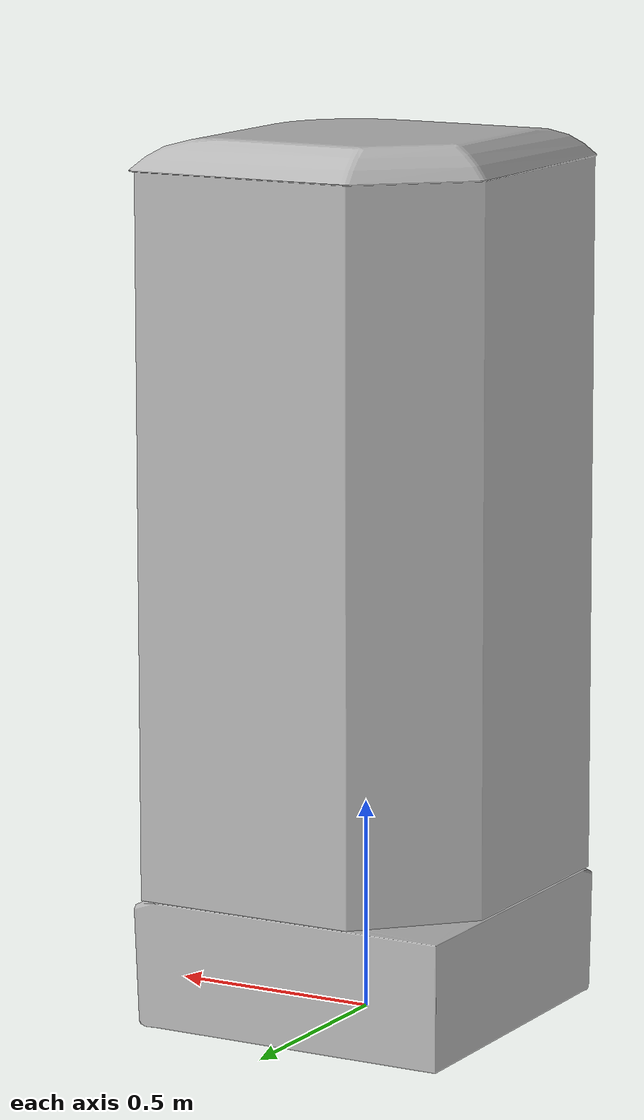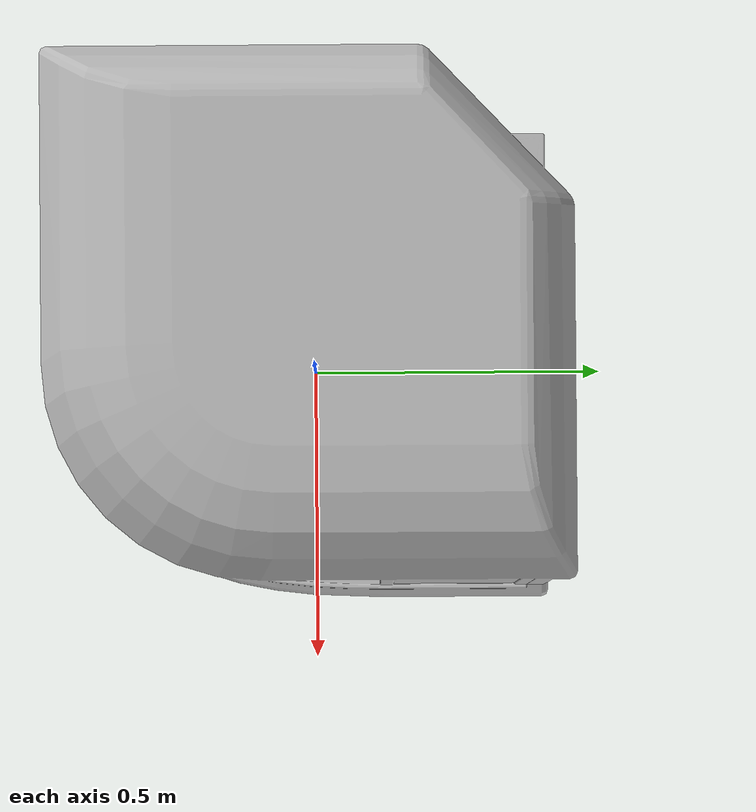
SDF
<?xml version='1.0'?>
<sdf version='1.4'>
  <model name='139'>
    <pose>0 0 0 0 0 0</pose>
    <static>true</static>
    <link name='link'>
      <collision name='collision'>
        <pose>0 0 0 0 0 0</pose>
        <geometry>
          <box>
            <size>0.799989 0.799988 2</size>
          </box>
        </geometry>
      </collision>
      <visual name='visual'>
        <pose>0 0 0 0 0 0</pose>
        <geometry>
          <mesh><uri>model://139/139.dae</uri></mesh>
        </geometry>
      </visual>
    </link>
  </model>
</sdf>
